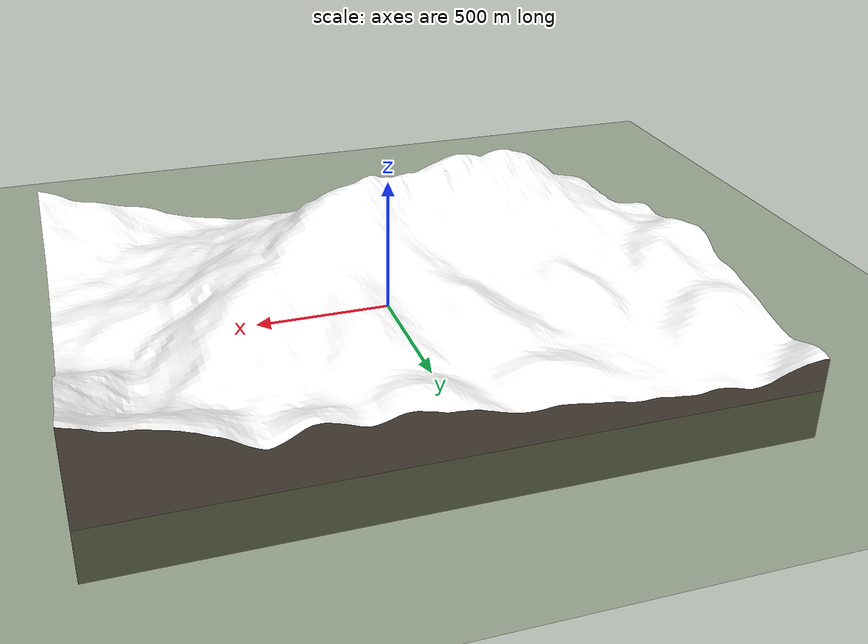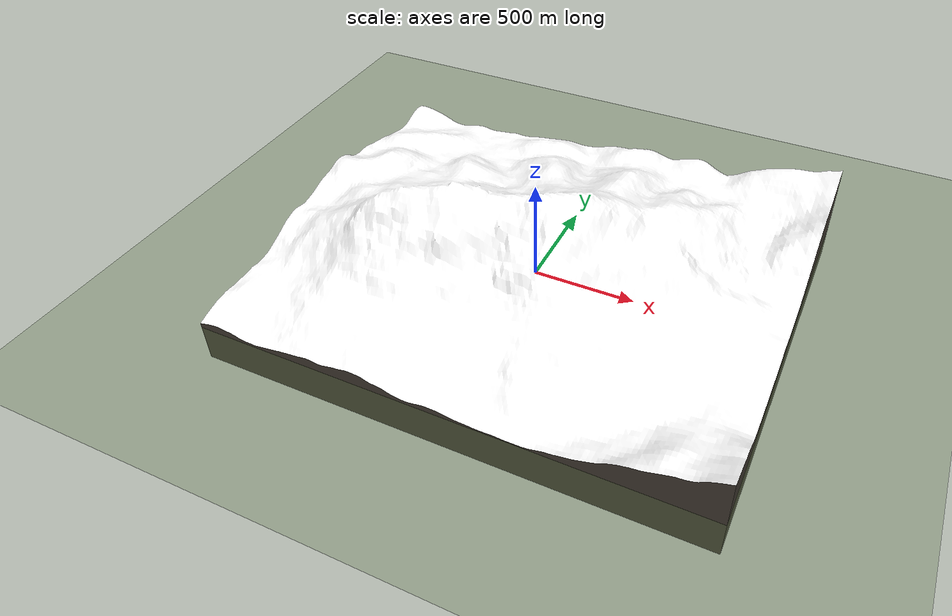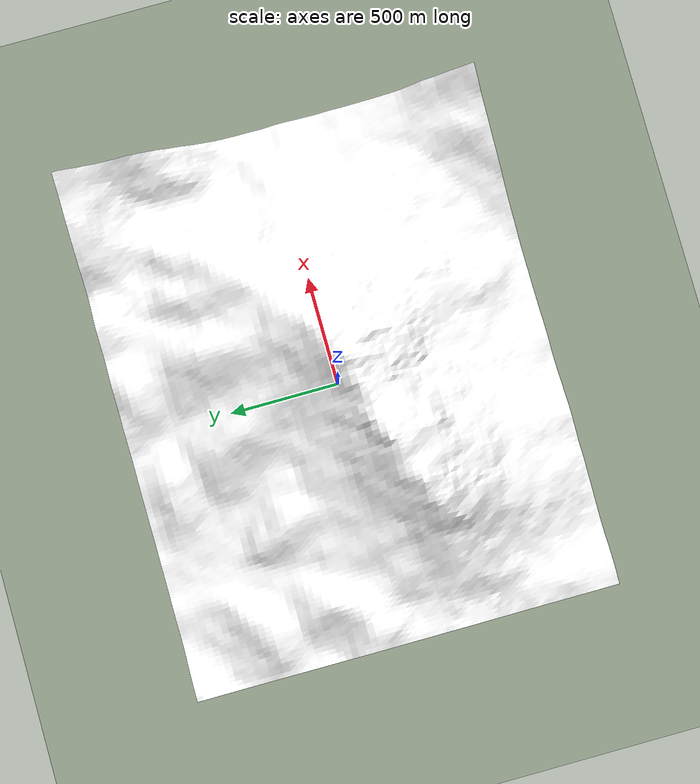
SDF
<?xml version="1.0" ?>
<sdf version="1.8">
  <world name="small_mountain_world">
    <!-- High-Performance Physics Configuration -->
    <physics name="1ms" type="ignored">
      <max_step_size>0.004</max_step_size>
      <real_time_factor>1.0</real_time_factor>
    </physics>

    <!-- Essential Gazebo Sim Systems -->
    <plugin filename="gz-sim-physics-system" name="gz::sim::systems::Physics" />
    <plugin filename="gz-sim-user-commands-system" name="gz::sim::systems::UserCommands" />
    <plugin filename="gz-sim-scene-broadcaster-system" name="gz::sim::systems::SceneBroadcaster" />
    <plugin filename="gz-sim-sensors-system" name="gz::sim::systems::Sensors">
      <render_engine>ogre2</render_engine>
    </plugin>
    <plugin filename="gz-sim-imu-system" name="gz::sim::systems::Imu" />

    <!-- Atmospheric Sky & Sunlight with Rayleigh Scattering -->
    <scene>
      <ambient>0.50 0.55 0.65 1.0</ambient>
      <background>0.50 0.72 0.95 1.0</background>
      <shadows>true</shadows>
      <grid>false</grid>
      <origin_visual>false</origin_visual>
      <sky>
        <time>11</time>
        <sunrise>6</sunrise>
        <sunset>19</sunset>
        <clouds>
          <speed>8</speed>
          <humidity>0.5</humidity>
          <mean_size>0.3</mean_size>
        </clouds>
      </sky>
    </scene>

    <!-- Warm Natural Sun (5500K Sunlight) -->
    <light type="directional" name="sun">
      <cast_shadows>true</cast_shadows>
      <pose>0 -5000 6000 0 0 0</pose>
      <diffuse>0.96 0.92 0.82 1.0</diffuse>
      <specular>0.0 0.0 0.0 1.0</specular>
      <direction>0.0 0.6 -0.6</direction>
      <attenuation>
        <range>20000</range>
        <constant>0.9</constant>
        <linear>0.005</linear>
        <quadratic>0.0002</quadratic>
      </attenuation>
    </light>

    <!-- GUI Controls & Cinematic Mountain Camera -->
    <gui fullscreen="0">
      <plugin filename="MinimalScene" name="3D View">
        <gz-gui>
          <title>3D View</title>
          <property type="bool" key="showTitleBar">false</property>
          <property type="string" key="state">docked</property>
        </gz-gui>
        <engine>ogre2</engine>
        <scene>scene</scene>
        <ambient_light>0.52 0.58 0.66</ambient_light>
        <background_color>0.50 0.72 0.95</background_color>
        <camera_pose>0.0 -2500.0 1350.0 0.0 0.45 1.5708</camera_pose>
        <camera_clip>
          <near>1.0</near>
          <far>30000.0</far>
        </camera_clip>
      </plugin>

      <plugin filename="InteractiveViewControl" name="Interactive view control">
        <gz-gui>
          <property key="resizable" type="bool">false</property>
          <property key="width" type="double">10</property>
          <property key="height" type="double">10</property>
          <property key="state" type="string">floating</property>
          <property key="showTitleBar" type="bool">false</property>
        </gz-gui>
      </plugin>
      <plugin filename="CameraTracking" name="Camera Tracking">
        <gz-gui>
          <property key="resizable" type="bool">false</property>
          <property key="width" type="double">10</property>
          <property key="height" type="double">10</property>
          <property key="state" type="string">floating</property>
          <property key="showTitleBar" type="bool">false</property>
        </gz-gui>
      </plugin>
      <plugin filename="GzSceneManager" name="Scene Manager">
        <gz-gui>
          <property key="resizable" type="bool">false</property>
          <property key="width" type="double">10</property>
          <property key="height" type="double">10</property>
          <property key="state" type="string">floating</property>
          <property key="showTitleBar" type="bool">false</property>
        </gz-gui>
      </plugin>
      <plugin filename="SelectEntities" name="Select Entities">
        <gz-gui>
          <property type="bool" key="showTitleBar">false</property>
          <property type="string" key="state">floating</property>
        </gz-gui>
      </plugin>
      <plugin filename="WorldControl" name="World control">
        <gz-gui>
          <title>World control</title>
          <property type="bool" key="showTitleBar">false</property>
          <property type="bool" key="resizable">false</property>
          <property type="double" key="height">72</property>
          <property type="double" key="width">121</property>
          <property type="double" key="z">1</property>
          <property type="string" key="state">floating</property>
          <property key="showTitleBar" type="bool">false</property>
          <property key="cardBackground" type="string">#666666</property>
        </gz-gui>
        <play_pause>true</play_pause>
        <step>true</step>
        <start_paused>false</start_paused>
        <use_event>true</use_event>
      </plugin>
      <plugin filename="WorldStats" name="World stats">
        <gz-gui>
          <title>World stats</title>
          <property type="bool" key="showTitleBar">false</property>
          <property type="bool" key="resizable">false</property>
          <property type="double" key="height">72</property>
          <property type="double" key="width">290</property>
          <property type="double" key="z">1</property>
          <property type="string" key="state">floating</property>
          <property key="showTitleBar" type="bool">false</property>
          <property key="cardBackground" type="string">#666666</property>
        </gz-gui>
        <sim_time>true</sim_time>
        <real_time>true</real_time>
        <real_time_factor>true</real_time_factor>
        <iterations>true</iterations>
      </plugin>
    </gui>

    <!-- Surrounding Natural Valley Floor (Expansive Horizon) -->
    <model name="valley_landscape">
      <static>true</static>
      <pose>0 0 -2.0 0 0 0</pose>
      <link name="link">
        <collision name="col">
          <geometry>
            <plane>
              <normal>0 0 1</normal>
              <size>16000 16000</size>
            </plane>
          </geometry>
        </collision>
        <visual name="vis">
          <geometry>
            <plane>
              <normal>0 0 1</normal>
              <size>16000 16000</size>
            </plane>
          </geometry>
          <material>
            <ambient>0.24 0.32 0.18 1.0</ambient>
            <diffuse>0.30 0.40 0.22 1.0</diffuse>
            <specular>0.0 0.0 0.0 1.0</specular>
          </material>
        </visual>
      </link>
    </model>

    <!-- Small Mountain 3D Terrain Model -->
    <model name="small_mountain_terrain">
      <static>true</static>
      <link name="link">
        <collision name="collision">
          <geometry>
            <mesh>
              <uri>model://small_mountain_terrain/meshes/small_mountain_collision.stl</uri>
            </mesh>
          </geometry>
          <surface>
            <friction>
              <ode>
                <mu>1.2</mu>
                <mu2>1.2</mu2>
              </ode>
            </friction>
          </surface>
        </collision>

        <!-- Mountain Topography & Vegetation -->
        <visual name="surface_visual">
          <geometry>
            <mesh>
              <uri>model://small_mountain_terrain/meshes/mountain_surface.obj</uri>
            </mesh>
          </geometry>
          <material>
            <ambient>0.85 0.85 0.85 1.0</ambient>
            <diffuse>1.0 1.0 1.0 1.0</diffuse>
            <specular>0.0 0.0 0.0 1.0</specular>
            <pbr>
              <metal>
                <albedo_map>model://small_mountain_terrain/materials/textures/overlay.png</albedo_map>
                <roughness>0.85</roughness>
                <metalness>0.02</metalness>
              </metal>
            </pbr>
          </material>
        </visual>

        <!-- Weathered Bedrock Skirt -->
        <visual name="bedrock_visual">
          <geometry>
            <mesh>
              <uri>model://small_mountain_terrain/meshes/mountain_bedrock.obj</uri>
            </mesh>
          </geometry>
          <material>
            <ambient>0.24 0.22 0.20 1.0</ambient>
            <diffuse>0.34 0.30 0.26 1.0</diffuse>
            <specular>0.02 0.02 0.02 1.0</specular>
          </material>
        </visual>
      </link>
    </model>

  </world>
</sdf>
